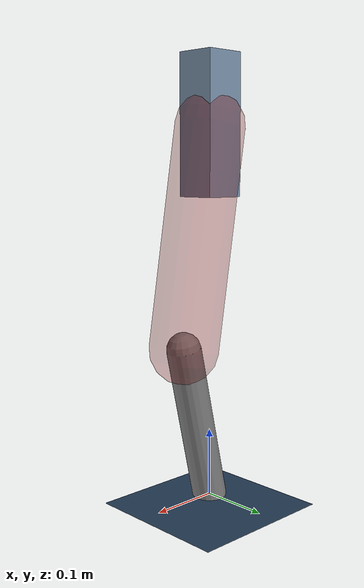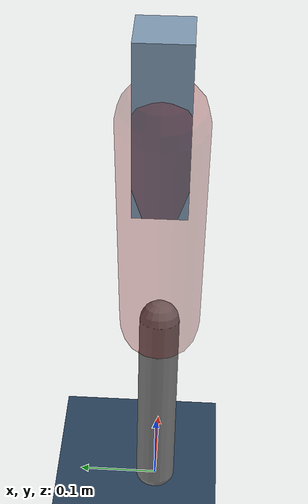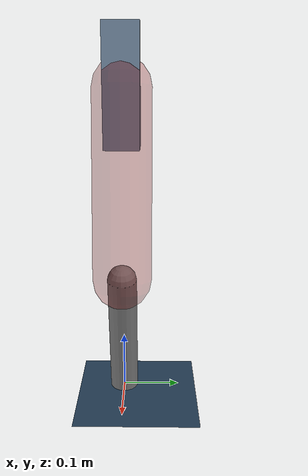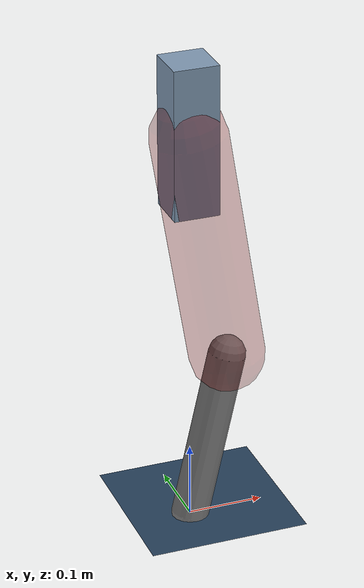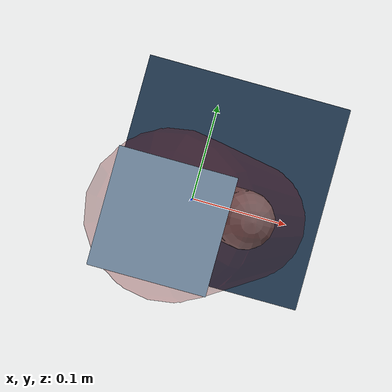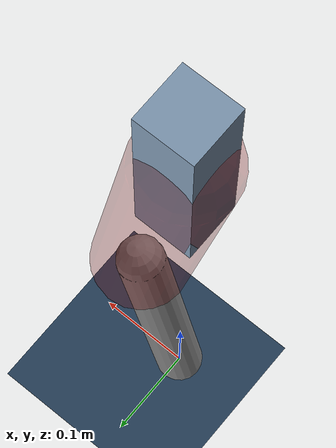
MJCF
<mujoco model="Hopper2D">
	<compiler inertiafromgeom="true" angle="radian" />
	<option timestep="0.001" integrator="implicit" cone="elliptic" solver="Newton" tolerance="1e-10" />

	<default>
		<geom contype="1" conaffinity="1" condim="3" friction="2 0.005 0.0001" solref="0.005 1" />
		<joint limited="true" damping="0.1" />
	</default>

	<asset>
		<texture name="skybox" type="skybox" builtin="gradient" rgb1=".4 .6 .8" rgb2="0 0 0" width="800" height="800" />
		<texture name="grid" type="2d" builtin="checker" rgb1=".1 .2 .3" rgb2=".2 .3 .4" width="300" height="300" mark="edge" markrgb=".2 .3 .4" />
		<material name="ground" texture="grid" texrepeat="1 1" texuniform="true" reflectance="0.1" />
		<material name="leg" rgba="0.5 0.6 0.7 1" />
	</asset>

	<worldbody>

		<geom name="floor" type="plane" size="5 5 0.25" material="ground" />

		<light directional="false" diffuse="0.8 0.8 0.8" specular="0.3 0.3 0.3" pos="0 0 2" dir="0 0 -1" />
		<light mode="targetbodycom" target="base" directional="false" diffuse="0.8 0.8 0.8" specular="0.3 0.3 0.3" pos="0 0 2" dir="0 0 -1" />

		<camera name="fixed" pos="0 -2 1" xyaxes="1 0 0 0 0 1" />
		<camera name="tracking" mode="trackcom" pos="0 -3 1" />

		<body name="root" pos="0 0 0.5444296475487442">
			<joint name="slide_x" type="slide" axis="1 0 0" range="-100 100" />
			<joint name="slide_z" type="slide" axis="0 0 1" range="0 10" />

			<body name="base" pos="0 0 0">
				<geom name="torso" type="box" size="0.03 0.03 0.1" mass="3.238" material="leg" />

				<body name="link1" pos="0 0 0" euler="0 1.4076807904261321 0">
					<joint type="hinge" axis="0 -1 0" pos="0 0 0" name="hinge1" limited="true" range="-3.14 3.14" stiffness="0" damping="0.1" />
					<geom name="thigh" type="capsule" fromto="0 0 0 0.318940969442104 0 0" size="0.05" rgba="0.5 0 0 0.3" mass="1.0403406174936807" />

					<body name="link2" pos="0.318940969442104 0 0" euler="0 0.38487048321002654 0">
						<joint type="hinge" axis="0 -1 0" pos="0 0 0" name="hinge2" limited="true" range="-3.14 3.14" stiffness="0" damping="0.1" />
						<geom name="shank" type="capsule" fromto="0 0 0 0.23548867810664026 0 0" size="0.025" mass="0.4305398102959762" />

					</body>
				</body>
			</body>
		</body>
	</worldbody>

	<actuator>
		<motor name="torque1" joint="hinge1" ctrlrange="-133.97230855568014 133.97230855568014" ctrllimited="true" gear="1" />
		<motor name="torque2" joint="hinge2" ctrlrange="-120.11308654814455 120.11308654814455" ctrllimited="true" gear="1" />
	</actuator>
</mujoco>
